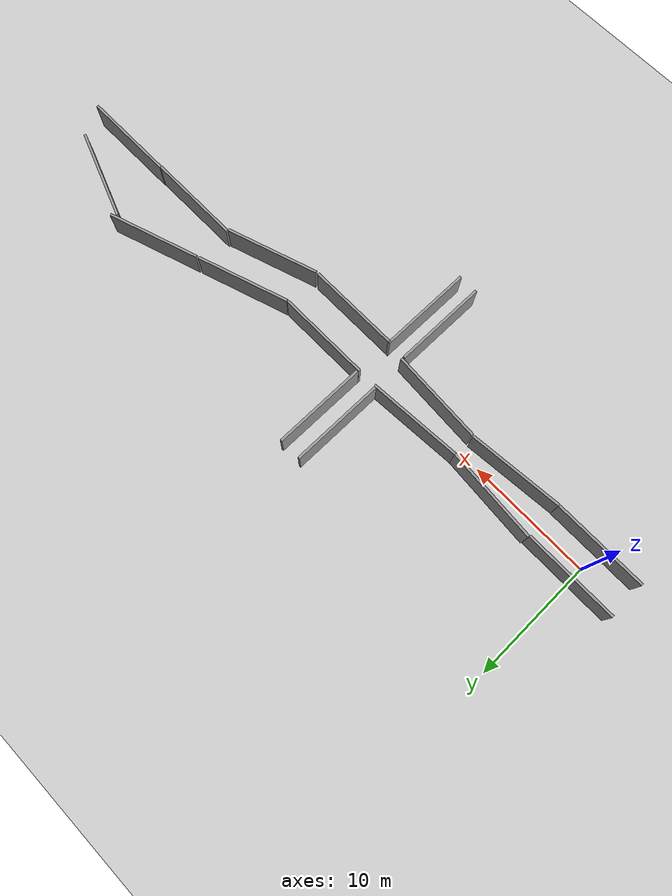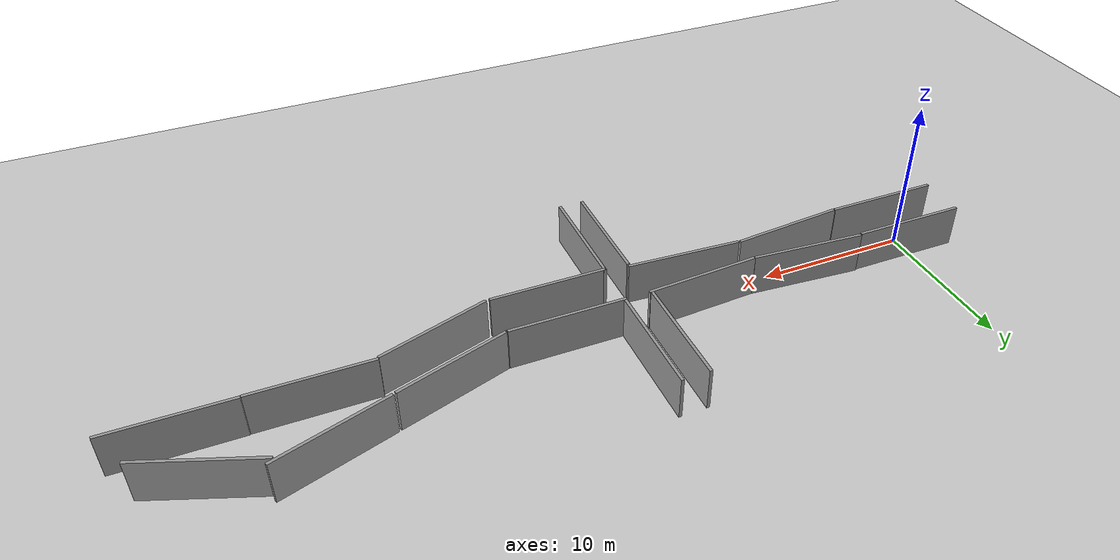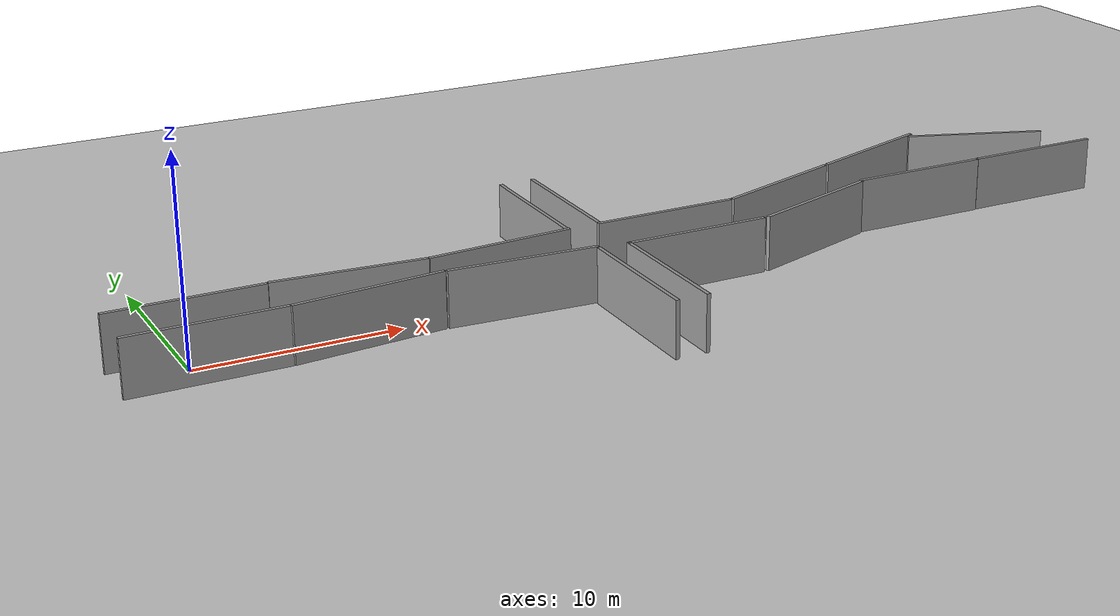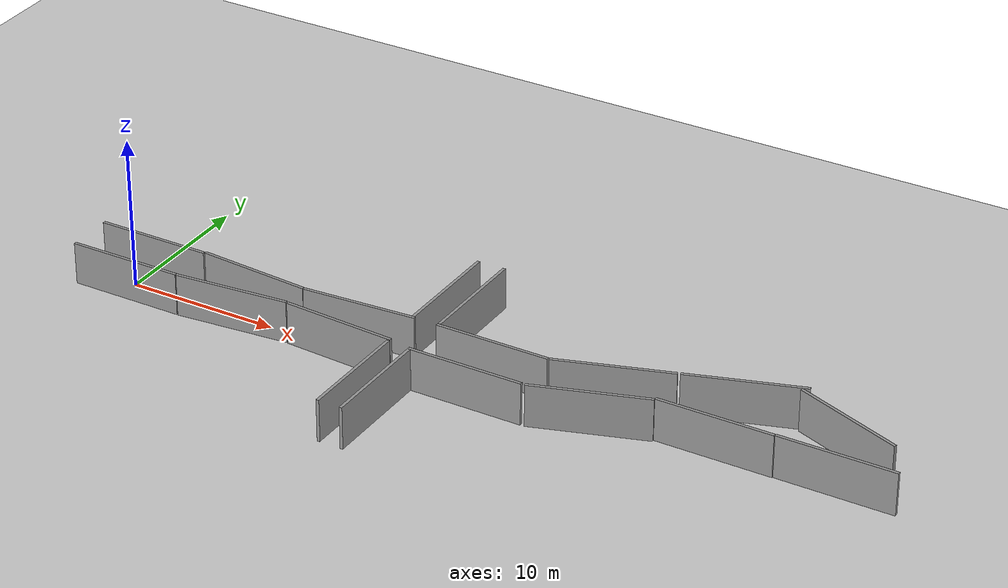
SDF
<sdf version="1.7">
 <world name="default">
  <light name="sun" type="directional">
   <pose>0 0 10 0 -0 0</pose>
   <diffuse>0.8 0.8 0.8 1</diffuse>
   <specular>0.2 0.2 0.2 1</specular>
   <attenuation>
    <range>1000</range>
    <constant>0.9</constant>
    <linear>0.01</linear>
    <quadratic>0.001</quadratic>
   </attenuation>
   <direction>-0.5 0.1 -0.9</direction>
   <spot><inner_angle>0</inner_angle><outer_angle>0</outer_angle><falloff>0</falloff></spot>
  </light>
  <model name="ground_plane">
   <static>1</static>
   <link name="link">
    <collision name="collision">
     <geometry><plane><normal>0 0 1</normal><size>100 100</size></plane></geometry>
     <surface><friction><ode><mu>100</mu><mu2>50</mu2></ode></friction></surface>
    </collision>
    <visual name="visual">
     <cast_shadows>0</cast_shadows>
     <geometry><plane><normal>0 0 1</normal><size>100 100</size></plane></geometry>
     <material>
      <script><uri>file://media/materials/scripts/gazebo.material</uri><name>Gazebo/Grey</name></script>
     </material>
    </visual>
   </link>
  </model>
  <gravity>0 0 -9.8</gravity>
  <magnetic_field>6e-06 2.3e-05 -4.2e-05</magnetic_field>
  <atmosphere type="adiabatic"/>
  <physics type="ode">
   <max_step_size>0.001</max_step_size>
   <real_time_factor>1</real_time_factor>
   <real_time_update_rate>1000</real_time_update_rate>
  </physics>
  <scene><ambient>0.4 0.4 0.4 1</ambient><background>0.7 0.7 0.7 1</background><shadows>1</shadows></scene>
  <spherical_coordinates>
   <surface_model>EARTH_WGS84</surface_model>
   <latitude_deg>0</latitude_deg>
   <longitude_deg>0</longitude_deg>
   <elevation>0</elevation>
   <heading_deg>0</heading_deg>
  </spherical_coordinates>
  <model name="grey_wall">
   <static>1</static>
   <link name="link">
    <pose>0 0 1.4 0 -0 0</pose>
    <collision name="collision"><geometry><box><size>7.5 0.2 2.8</size></box></geometry></collision>
    <visual name="visual">
     <cast_shadows>0</cast_shadows>
     <geometry><box><size>7.5 0.2 2.8</size></box></geometry>
     <material>
      <script>
       <uri>model://grey_wall/materials/scripts</uri>
       <uri>model://grey_wall/materials/textures</uri>
       <name>vrc/grey_wall</name>
      </script>
     </material>
    </visual>
   </link>
   <pose>0.45 1.5 0 0 -0 0</pose>
  </model>
  <model name="grey_wall_clone">
   <static>1</static>
   <link name="link">
    <pose>0 0 1.4 0 -0 0</pose>
    <collision name="collision"><geometry><box><size>7.5 0.2 2.8</size></box></geometry></collision>
    <visual name="visual">
     <cast_shadows>0</cast_shadows>
     <geometry><box><size>7.5 0.2 2.8</size></box></geometry>
     <material>
      <script>
       <uri>model://grey_wall/materials/scripts</uri>
       <uri>model://grey_wall/materials/textures</uri>
       <name>vrc/grey_wall</name>
      </script>
     </material>
    </visual>
   </link>
   <pose>0.45 -1.5 0 0 -0 0</pose>
  </model>
  <model name="grey_wall_clone_0">
   <static>1</static>
   <link name="link">
    <pose>0 0 1.4 0 -0 0</pose>
    <collision name="collision"><geometry><box><size>7.5 0.2 2.8</size></box></geometry></collision>
    <visual name="visual">
     <cast_shadows>0</cast_shadows>
     <geometry><box><size>7.5 0.2 2.8</size></box></geometry>
     <material>
      <script>
       <uri>model://grey_wall/materials/scripts</uri>
       <uri>model://grey_wall/materials/textures</uri>
       <name>vrc/grey_wall</name>
      </script>
     </material>
    </visual>
   </link>
   <pose>7.9872 1.2991 0 0 -0 -0.0765</pose>
  </model>
  <model name="grey_wall_clone_1">
   <static>1</static>
   <link name="link">
    <pose>0 0 1.4 0 -0 0</pose>
    <collision name="collision"><geometry><box><size>7.5 0.2 2.8</size></box></geometry></collision>
    <visual name="visual">
     <cast_shadows>0</cast_shadows>
     <geometry><box><size>7.5 0.2 2.8</size></box></geometry>
     <material>
      <script>
       <uri>model://grey_wall/materials/scripts</uri>
       <uri>model://grey_wall/materials/textures</uri>
       <name>vrc/grey_wall</name>
      </script>
     </material>
    </visual>
   </link>
   <pose>7.9872 -1.1741 0 0 -0 0.0898</pose>
  </model>
  <model name="grey_wall_clone_2">
   <static>1</static>
   <link name="link">
    <pose>0 0 1.4 0 -0 0</pose>
    <collision name="collision"><geometry><box><size>7.5 0.2 2.8</size></box></geometry></collision>
    <visual name="visual">
     <cast_shadows>0</cast_shadows>
     <geometry><box><size>7.5 0.2 2.8</size></box></geometry>
     <material>
      <script>
       <uri>model://grey_wall/materials/scripts</uri>
       <uri>model://grey_wall/materials/textures</uri>
       <name>vrc/grey_wall</name>
      </script>
     </material>
    </visual>
   </link>
   <pose>15.4862 1.246 0 0 -0 0.06425</pose>
  </model>
  <model name="grey_wall_clone_3">
   <static>1</static>
   <link name="link">
    <pose>0 0 1.4 0 -0 0</pose>
    <collision name="collision"><geometry><box><size>7.5 0.2 2.8</size></box></geometry></collision>
    <visual name="visual">
     <cast_shadows>0</cast_shadows>
     <geometry><box><size>7.5 0.2 2.8</size></box></geometry>
     <material>
      <script>
       <uri>model://grey_wall/materials/scripts</uri>
       <uri>model://grey_wall/materials/textures</uri>
       <name>vrc/grey_wall</name>
      </script>
     </material>
    </visual>
   </link>
   <pose>15.563174 -1.091261 0 0 -0 -0.059041</pose>
  </model>
  <model name="grey_wall_clone_4">
   <static>1</static>
   <link name="link">
    <pose>0 0 1.4 0 -0 0</pose>
    <collision name="collision"><geometry><box><size>7.5 0.2 2.8</size></box></geometry></collision>
    <visual name="visual">
     <cast_shadows>0</cast_shadows>
     <geometry><box><size>7.5 0.2 2.8</size></box></geometry>
     <material>
      <script>
       <uri>model://grey_wall/materials/scripts</uri>
       <uri>model://grey_wall/materials/textures</uri>
       <name>vrc/grey_wall</name>
      </script>
     </material>
    </visual>
   </link>
   <pose>19.126 5.323 0 0 0 -1.58093</pose>
  </model>
  <model name="grey_wall_clone_4_clone">
   <static>1</static>
   <link name="link">
    <pose>0 0 1.4 0 -0 0</pose>
    <collision name="collision"><geometry><box><size>7.5 0.2 2.8</size></box></geometry></collision>
    <visual name="visual">
     <cast_shadows>0</cast_shadows>
     <geometry><box><size>7.5 0.2 2.8</size></box></geometry>
     <material>
      <script>
       <uri>model://grey_wall/materials/scripts</uri>
       <uri>model://grey_wall/materials/textures</uri>
       <name>vrc/grey_wall</name>
      </script>
     </material>
    </visual>
   </link>
   <pose>19.2 -5.25 0 0 0 -1.58093</pose>
  </model>
  <model name="grey_wall_clone_4_clone_0">
   <static>1</static>
   <link name="link">
    <pose>0 0 1.4 0 -0 0</pose>
    <collision name="collision"><geometry><box><size>7.5 0.2 2.8</size></box></geometry></collision>
    <visual name="visual">
     <cast_shadows>0</cast_shadows>
     <geometry><box><size>7.5 0.2 2.8</size></box></geometry>
     <material>
      <script>
       <uri>model://grey_wall/materials/scripts</uri>
       <uri>model://grey_wall/materials/textures</uri>
       <name>vrc/grey_wall</name>
      </script>
     </material>
    </visual>
   </link>
   <pose>20.75 -5.25 0 0 0 -1.58093</pose>
  </model>
  <model name="grey_wall_clone_4_clone_1">
   <static>1</static>
   <link name="link">
    <pose>0 0 1.4 0 -0 0</pose>
    <collision name="collision"><geometry><box><size>7.5 0.2 2.8</size></box></geometry></collision>
    <visual name="visual">
     <cast_shadows>0</cast_shadows>
     <geometry><box><size>7.5 0.2 2.8</size></box></geometry>
     <material>
      <script>
       <uri>model://grey_wall/materials/scripts</uri>
       <uri>model://grey_wall/materials/textures</uri>
       <name>vrc/grey_wall</name>
      </script>
     </material>
    </visual>
   </link>
   <pose>20.8975 5.36 0 0 0 -1.58093</pose>
  </model>
  <model name="grey_wall_clone_3_clone">
   <static>1</static>
   <link name="link">
    <pose>0 0 1.4 0 -0 0</pose>
    <collision name="collision"><geometry><box><size>7.5 0.2 2.8</size></box></geometry></collision>
    <visual name="visual">
     <cast_shadows>0</cast_shadows>
     <geometry><box><size>7.5 0.2 2.8</size></box></geometry>
     <material>
      <script>
       <uri>model://grey_wall/materials/scripts</uri>
       <uri>model://grey_wall/materials/textures</uri>
       <name>vrc/grey_wall</name>
      </script>
     </material>
    </visual>
   </link>
   <pose>24.5 -1.613 0 0 -0 0</pose>
  </model>
  <model name="grey_wall_clone_3_clone_0">
   <static>1</static>
   <link name="link">
    <pose>0 0 1.4 0 -0 0</pose>
    <collision name="collision"><geometry><box><size>7.5 0.2 2.8</size></box></geometry></collision>
    <visual name="visual">
     <cast_shadows>0</cast_shadows>
     <geometry><box><size>7.5 0.2 2.8</size></box></geometry>
     <material>
      <script>
       <uri>model://grey_wall/materials/scripts</uri>
       <uri>model://grey_wall/materials/textures</uri>
       <name>vrc/grey_wall</name>
      </script>
     </material>
    </visual>
   </link>
   <pose>24.5 1.496 0 0 -0 0</pose>
  </model>
  <model name="grey_wall_clone_5">
   <static>1</static>
   <link name="link">
    <pose>0 0 1.4 0 -0 0</pose>
    <collision name="collision"><geometry><box><size>7.5 0.2 2.8</size></box></geometry></collision>
    <visual name="visual">
     <cast_shadows>0</cast_shadows>
     <geometry><box><size>7.5 0.2 2.8</size></box></geometry>
     <material>
      <script>
       <uri>model://grey_wall/materials/scripts</uri>
       <uri>model://grey_wall/materials/textures</uri>
       <name>vrc/grey_wall</name>
      </script>
     </material>
    </visual>
   </link>
   <pose>31.8895 2.6841 0 0 -0 0.318871</pose>
  </model>
  <model name="grey_wall_clone_3_clone_clone">
   <static>1</static>
   <link name="link">
    <pose>0 0 1.4 0 -0 0</pose>
    <collision name="collision"><geometry><box><size>7.5 0.2 2.8</size></box></geometry></collision>
    <visual name="visual">
     <cast_shadows>0</cast_shadows>
     <geometry><box><size>7.5 0.2 2.8</size></box></geometry>
     <material>
      <script>
       <uri>model://grey_wall/materials/scripts</uri>
       <uri>model://grey_wall/materials/textures</uri>
       <name>vrc/grey_wall</name>
      </script>
     </material>
    </visual>
   </link>
   <pose>39.340630 0.863738 0 0 -0 0</pose>
  </model>
  <model name="grey_wall_clone_3_clone_clone_clone">
   <static>1</static>
   <link name="link">
    <pose>0 0 1.4 0 -0 0</pose>
    <collision name="collision"><geometry><box><size>7.5 0.2 2.8</size></box></geometry></collision>
    <visual name="visual">
     <cast_shadows>0</cast_shadows>
     <geometry><box><size>7.5 0.2 2.8</size></box></geometry>
     <material>
      <script>
       <uri>model://grey_wall/materials/scripts</uri>
       <uri>model://grey_wall/materials/textures</uri>
       <name>vrc/grey_wall</name>
      </script>
     </material>
    </visual>
   </link>
   <pose>46.877464 0.9004 0 0 -0 0</pose>
  </model>
  <model name="grey_wall_clone_5_clone">
   <static>1</static>
   <link name="link">
    <pose>0 0 1.4 0 -0 0</pose>
    <collision name="collision"><geometry><box><size>7.5 0.2 2.8</size></box></geometry></collision>
    <visual name="visual">
     <cast_shadows>0</cast_shadows>
     <geometry><box><size>7.5 0.2 2.8</size></box></geometry>
     <material>
      <script>
       <uri>model://grey_wall/materials/scripts</uri>
       <uri>model://grey_wall/materials/textures</uri>
       <name>vrc/grey_wall</name>
      </script>
     </material>
    </visual>
   </link>
   <pose>39.163692 5.096541 0 0 -0 0.318871</pose>
  </model>
  <model name="grey_wall_clone_5_clone_0">
   <static>1</static>
   <link name="link">
    <pose>0 0 1.4 0 -0 0</pose>
    <collision name="collision"><geometry><box><size>7.5 0.2 2.8</size></box></geometry></collision>
    <visual name="visual">
     <cast_shadows>0</cast_shadows>
     <geometry><box><size>7.5 0.2 2.8</size></box></geometry>
     <material>
      <script>
       <uri>model://grey_wall/materials/scripts</uri>
       <uri>model://grey_wall/materials/textures</uri>
       <name>vrc/grey_wall</name>
      </script>
     </material>
    </visual>
   </link>
   <pose>32.030418 -0.433754 0 0 -0 0.318871</pose>
  </model>
  <model name="grey_wall_clone_3_clone_clone_clone_clone">
   <static>1</static>
   <link name="link">
    <pose>0 0 1.4 0 -0 0</pose>
    <collision name="collision"><geometry><box><size>7.5 0.2 2.8</size></box></geometry></collision>
    <visual name="visual">
     <cast_shadows>0</cast_shadows>
     <geometry><box><size>7.5 0.2 2.8</size></box></geometry>
     <material>
      <script>
       <uri>model://grey_wall/materials/scripts</uri>
       <uri>model://grey_wall/materials/textures</uri>
       <name>vrc/grey_wall</name>
      </script>
     </material>
    </visual>
   </link>
   <pose>45.835171 4.595527 0 0 -0 -0.364106</pose>
  </model>
 </world>
</sdf>
